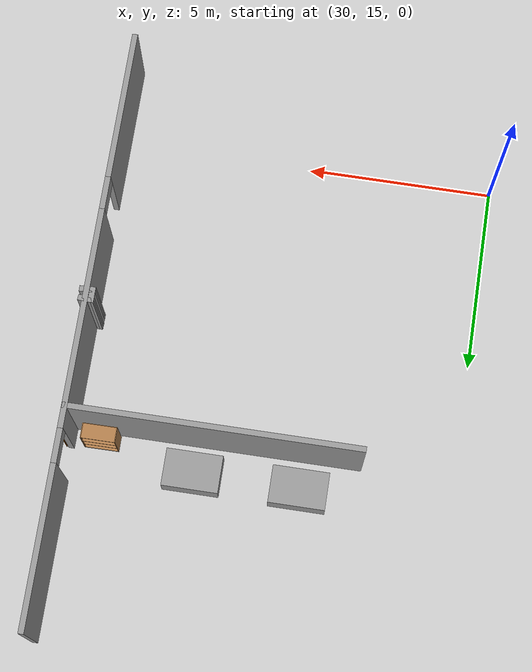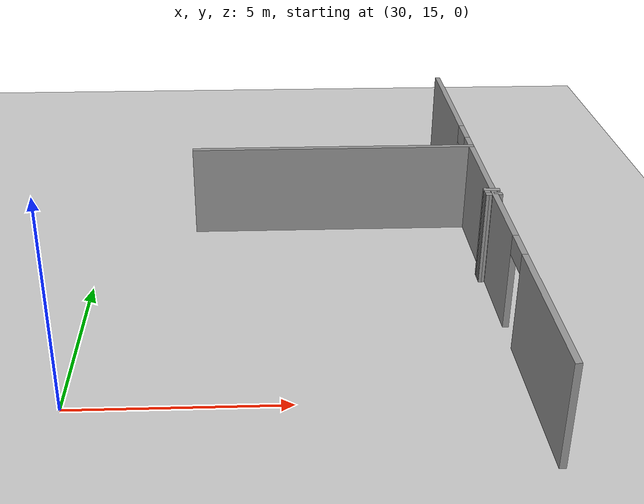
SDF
<sdf version="1.6">
 <world name="default">
  <model name="ground_plane">
   <static>1</static>
   <link name="link">
    <collision name="collision">
     <geometry><plane><normal>0 0 1</normal><size>100 100</size></plane></geometry>
     <surface><friction><ode><mu>100</mu><mu2>50</mu2></ode></friction></surface>
    </collision>
    <visual name="visual">
     <cast_shadows>0</cast_shadows>
     <geometry><plane><normal>0 0 1</normal><size>100 100</size></plane></geometry>
     <material>
      <script><uri>file://media/materials/scripts/gazebo.material</uri><name>Gazebo/Grey</name></script>
     </material>
    </visual>
   </link>
  </model>
  <model name="CVSSP">
   <pose>23.8714 24.094 0 0 -0 0</pose>
   <link name="Wall_11">
    <pose>16.2898 -3.24326 0 0 0 -1.57079</pose>
    <visual name="Wall_11_Visual_0">
     <pose>-5.93516 0 1.25 0 -0 0</pose>
     <geometry><box><size>4.26019 0.15 2.5</size></box></geometry>
     <material>
      <script><uri>file://media/materials/scripts/gazebo.material</uri><name>Gazebo/Grey</name></script>
      <ambient>0.588235 0.588235 0.588235 1</ambient>
     </material>
    </visual>
    <collision name="Wall_11_Collision_0">
     <geometry><box><size>4.26019 0.15 2.5</size></box></geometry>
     <pose>-5.93516 0 1.25 0 -0 0</pose>
    </collision>
    <visual name="Wall_11_Visual_1">
     <pose>0.054186 0 1.25 0 -0 0</pose>
     <geometry><box><size>5.9185 0.15 2.5</size></box></geometry>
     <material>
      <script><uri>file://media/materials/scripts/gazebo.material</uri><name>Gazebo/Grey</name></script>
      <ambient>0.588235 0.588235 0.588235 1</ambient>
     </material>
    </visual>
    <collision name="Wall_11_Collision_1">
     <geometry><box><size>5.9185 0.15 2.5</size></box></geometry>
     <pose>0.054186 0 1.25 0 -0 0</pose>
    </collision>
    <visual name="Wall_11_Visual_2">
     <pose>5.98935 0 1.25 0 -0 0</pose>
     <geometry><box><size>4.15182 0.15 2.5</size></box></geometry>
     <material>
      <script><uri>file://media/materials/scripts/gazebo.material</uri><name>Gazebo/Grey</name></script>
      <ambient>0.588235 0.588235 0.588235 1</ambient>
     </material>
    </visual>
    <collision name="Wall_11_Collision_2">
     <geometry><box><size>4.15182 0.15 2.5</size></box></geometry>
     <pose>5.98935 0 1.25 0 -0 0</pose>
    </collision>
    <visual name="Wall_11_Visual_3">
     <pose>-3.35506 0 2.25 0 -0 0</pose>
     <geometry><box><size>0.9 0.15 0.5</size></box></geometry>
     <material>
      <script><uri>file://media/materials/scripts/gazebo.material</uri><name>Gazebo/Grey</name></script>
      <ambient>0.588235 0.588235 0.588235 1</ambient>
     </material>
    </visual>
    <collision name="Wall_11_Collision_3">
     <geometry><box><size>0.9 0.15 0.5</size></box></geometry>
     <pose>-3.35506 0 2.25 0 -0 0</pose>
    </collision>
    <visual name="Wall_11_Visual_4">
     <pose>3.46344 0 2.25 0 -0 0</pose>
     <geometry><box><size>0.9 0.15 0.5</size></box></geometry>
     <material>
      <script><uri>file://media/materials/scripts/gazebo.material</uri><name>Gazebo/Grey</name></script>
      <ambient>0.588235 0.588235 0.588235 1</ambient>
     </material>
    </visual>
    <collision name="Wall_11_Collision_4">
     <geometry><box><size>0.9 0.15 0.5</size></box></geometry>
     <pose>3.46344 0 2.25 0 -0 0</pose>
    </collision>
   </link>
   <link name="Wall_125">
    <collision name="Wall_125_Collision">
     <geometry><box><size>7.75 0.15 2.5</size></box></geometry>
     <pose>0 0 1.25 0 -0 0</pose>
    </collision>
    <visual name="Wall_125_Visual">
     <pose>0 0 1.25 0 -0 0</pose>
     <geometry><box><size>7.75 0.15 2.5</size></box></geometry>
     <material>
      <script><uri>file://media/materials/scripts/gazebo.material</uri><name>Gazebo/Grey</name></script>
      <ambient>1 1 1 1</ambient>
     </material>
    </visual>
    <pose>12.4797 -0.937315 0 0 -0 3.14159</pose>
   </link>
   <link name="Wall_739">
    <collision name="Wall_739_Collision">
     <geometry><box><size>0.412351 0.15 2.5</size></box></geometry>
     <pose>0 0 1.25 0 -0 0</pose>
    </collision>
    <visual name="Wall_739_Visual">
     <pose>0 0 1.25 0 -0 0</pose>
     <geometry><box><size>0.412351 0.15 2.5</size></box></geometry>
     <material>
      <script><uri>file://media/materials/scripts/gazebo.material</uri><name>Gazebo/Grey</name></script>
      <ambient>1 1 1 1</ambient>
     </material>
    </visual>
    <pose>16.2625 -3.77466 0 0 0 -0.066568</pose>
   </link>
   <link name="Wall_741">
    <collision name="Wall_741_Collision">
     <geometry><box><size>0.42166 0.15 2.5</size></box></geometry>
     <pose>0 0 1.25 0 -0 0</pose>
    </collision>
    <visual name="Wall_741_Visual">
     <pose>0 0 1.25 0 -0 0</pose>
     <geometry><box><size>0.42166 0.15 2.5</size></box></geometry>
     <material>
      <script><uri>file://media/materials/scripts/gazebo.material</uri><name>Gazebo/Grey</name></script>
      <ambient>1 1 1 1</ambient>
     </material>
    </visual>
    <pose>16.2669 -4.03264 0 0 0 -3.10935</pose>
   </link>
   <link name="Wall_742">
    <collision name="Wall_742_Collision">
     <geometry><box><size>0.421096 0.15 2.5</size></box></geometry>
     <pose>0 0 1.25 0 -0 0</pose>
    </collision>
    <visual name="Wall_742_Visual">
     <pose>0 0 1.25 0 -0 0</pose>
     <geometry><box><size>0.421096 0.15 2.5</size></box></geometry>
     <material>
      <script><uri>file://media/materials/scripts/gazebo.material</uri><name>Gazebo/Grey</name></script>
      <ambient>1 1 1 1</ambient>
     </material>
    </visual>
    <pose>16.1314 -3.90146 0 0 -0 1.5708</pose>
   </link>
   <static>1</static>
  </model>
  <model name="bookshelf_oak_clone">
   <link name="link">
    <inertial><mass>1</mass></inertial>
    <visual name="visual4">
     <pose>0 -0.195 0.03 0 -0 0</pose>
     <geometry><box><size>0.88 0.4 0.06</size></box></geometry>
     <material>
      <script><uri>file://media/materials/scripts/gazebo.material</uri><name>Gazebo/Wood</name></script>
      <shader type="pixel"/>
     </material>
    </visual>
    <visual name="visual3">
     <pose>-0.45 -0.195 0.6 0 -0 0</pose>
     <geometry><box><size>0.02 0.4 1.2</size></box></geometry>
     <material>
      <script><uri>file://media/materials/scripts/gazebo.material</uri><name>Gazebo/Wood</name></script>
      <shader type="pixel"/>
     </material>
    </visual>
    <visual name="visual5">
     <pose>0 -0.195 1.19 0 -0 0</pose>
     <geometry><box><size>0.88 0.4 0.02</size></box></geometry>
     <material>
      <script><uri>file://media/materials/scripts/gazebo.material</uri><name>Gazebo/Wood</name></script>
      <shader type="pixel"/>
     </material>
    </visual>
    <visual name="visual2">
     <pose>0.45 -0.195 0.6 0 -0 0</pose>
     <geometry><box><size>0.02 0.4 1.2</size></box></geometry>
     <material>
      <script><uri>file://media/materials/scripts/gazebo.material</uri><name>Gazebo/Wood</name></script>
      <shader type="pixel"/>
     </material>
    </visual>
    <visual name="visual1">
     <pose>0 0.005 0.6 0 -0 0</pose>
     <geometry><box><size>0.9 0.01 1.2</size></box></geometry>
     <material>
      <script><uri>file://media/materials/scripts/gazebo.material</uri><name>Gazebo/Wood</name></script>
      <shader type="pixel"/>
     </material>
    </visual>
    <visual name="visual6">
     <pose>0 -0.195 0.43 0 -0 0</pose>
     <geometry><box><size>0.88 0.4 0.02</size></box></geometry>
     <material>
      <script><uri>file://media/materials/scripts/gazebo.material</uri><name>Gazebo/Wood</name></script>
      <shader type="pixel"/>
     </material>
    </visual>
    <visual name="visual7">
     <pose>0 -0.195 0.8 0 -0 0</pose>
     <geometry><box><size>0.88 0.4 0.02</size></box></geometry>
     <material>
      <script><uri>file://media/materials/scripts/gazebo.material</uri><name>Gazebo/Wood</name></script>
      <shader type="pixel"/>
     </material>
    </visual>
    <collision name="back">
     <pose>0 0.005 0.6 0 -0 0</pose>
     <geometry><box><size>0.9 0.01 1.2</size></box></geometry>
     <surface>
      <friction>
       <ode><mu>1</mu><mu2>1</mu2><fdir1>0 0 0</fdir1><slip1>0</slip1><slip2>0</slip2></ode>
       <torsional>
        <coefficient>1</coefficient>
        <patch_radius>0</patch_radius>
        <surface_radius>0</surface_radius>
        <use_patch_radius>1</use_patch_radius>
        <ode><slip>0</slip></ode>
       </torsional>
      </friction>
      <bounce><restitution_coefficient>0</restitution_coefficient><threshold>1e+06</threshold></bounce>
      <contact>
       <collide_without_contact>0</collide_without_contact>
       <collide_without_contact_bitmask>1</collide_without_contact_bitmask>
       <collide_bitmask>1</collide_bitmask>
       <ode>
        <soft_cfm>0</soft_cfm>
        <soft_erp>0.2</soft_erp>
        <kp>1e+13</kp>
        <kd>1</kd>
        <max_vel>0.01</max_vel>
        <min_depth>0</min_depth>
       </ode>
       <bullet>
        <split_impulse>1</split_impulse>
        <split_impulse_penetration_threshold>-0.01</split_impulse_penetration_threshold>
        <soft_cfm>0</soft_cfm>
        <soft_erp>0.2</soft_erp>
        <kp>1e+13</kp>
        <kd>1</kd>
       </bullet>
      </contact>
     </surface>
    </collision>
    <collision name="left_side">
     <pose>0.45 -0.195 0.6 0 -0 0</pose>
     <geometry><box><size>0.02 0.4 1.2</size></box></geometry>
     <surface>
      <friction>
       <ode><mu>1</mu><mu2>1</mu2><fdir1>0 0 0</fdir1><slip1>0</slip1><slip2>0</slip2></ode>
       <torsional>
        <coefficient>1</coefficient>
        <patch_radius>0</patch_radius>
        <surface_radius>0</surface_radius>
        <use_patch_radius>1</use_patch_radius>
        <ode><slip>0</slip></ode>
       </torsional>
      </friction>
      <bounce><restitution_coefficient>0</restitution_coefficient><threshold>1e+06</threshold></bounce>
      <contact>
       <collide_without_contact>0</collide_without_contact>
       <collide_without_contact_bitmask>1</collide_without_contact_bitmask>
       <collide_bitmask>1</collide_bitmask>
       <ode>
        <soft_cfm>0</soft_cfm>
        <soft_erp>0.2</soft_erp>
        <kp>1e+13</kp>
        <kd>1</kd>
        <max_vel>0.01</max_vel>
        <min_depth>0</min_depth>
       </ode>
       <bullet>
        <split_impulse>1</split_impulse>
        <split_impulse_penetration_threshold>-0.01</split_impulse_penetration_threshold>
        <soft_cfm>0</soft_cfm>
        <soft_erp>0.2</soft_erp>
        <kp>1e+13</kp>
        <kd>1</kd>
       </bullet>
      </contact>
     </surface>
    </collision>
    <collision name="right_side">
     <pose>-0.45 -0.195 0.6 0 -0 0</pose>
     <geometry><box><size>0.02 0.4 1.2</size></box></geometry>
     <surface>
      <friction>
       <ode><mu>1</mu><mu2>1</mu2><fdir1>0 0 0</fdir1><slip1>0</slip1><slip2>0</slip2></ode>
       <torsional>
        <coefficient>1</coefficient>
        <patch_radius>0</patch_radius>
        <surface_radius>0</surface_radius>
        <use_patch_radius>1</use_patch_radius>
        <ode><slip>0</slip></ode>
       </torsional>
      </friction>
      <bounce><restitution_coefficient>0</restitution_coefficient><threshold>1e+06</threshold></bounce>
      <contact>
       <collide_without_contact>0</collide_without_contact>
       <collide_without_contact_bitmask>1</collide_without_contact_bitmask>
       <collide_bitmask>1</collide_bitmask>
       <ode>
        <soft_cfm>0</soft_cfm>
        <soft_erp>0.2</soft_erp>
        <kp>1e+13</kp>
        <kd>1</kd>
        <max_vel>0.01</max_vel>
        <min_depth>0</min_depth>
       </ode>
       <bullet>
        <split_impulse>1</split_impulse>
        <split_impulse_penetration_threshold>-0.01</split_impulse_penetration_threshold>
        <soft_cfm>0</soft_cfm>
        <soft_erp>0.2</soft_erp>
        <kp>1e+13</kp>
        <kd>1</kd>
       </bullet>
      </contact>
     </surface>
    </collision>
    <collision name="bottom">
     <pose>0 -0.195 0.03 0 -0 0</pose>
     <geometry><box><size>0.88 0.4 0.06</size></box></geometry>
     <surface>
      <friction>
       <ode><mu>1</mu><mu2>1</mu2><fdir1>0 0 0</fdir1><slip1>0</slip1><slip2>0</slip2></ode>
       <torsional>
        <coefficient>1</coefficient>
        <patch_radius>0</patch_radius>
        <surface_radius>0</surface_radius>
        <use_patch_radius>1</use_patch_radius>
        <ode><slip>0</slip></ode>
       </torsional>
      </friction>
      <bounce><restitution_coefficient>0</restitution_coefficient><threshold>1e+06</threshold></bounce>
      <contact>
       <collide_without_contact>0</collide_without_contact>
       <collide_without_contact_bitmask>1</collide_without_contact_bitmask>
       <collide_bitmask>1</collide_bitmask>
       <ode>
        <soft_cfm>0</soft_cfm>
        <soft_erp>0.2</soft_erp>
        <kp>1e+13</kp>
        <kd>1</kd>
        <max_vel>0.01</max_vel>
        <min_depth>0</min_depth>
       </ode>
       <bullet>
        <split_impulse>1</split_impulse>
        <split_impulse_penetration_threshold>-0.01</split_impulse_penetration_threshold>
        <soft_cfm>0</soft_cfm>
        <soft_erp>0.2</soft_erp>
        <kp>1e+13</kp>
        <kd>1</kd>
       </bullet>
      </contact>
     </surface>
    </collision>
    <collision name="top">
     <pose>0 -0.195 1.19 0 -0 0</pose>
     <geometry><box><size>0.88 0.4 0.02</size></box></geometry>
     <surface>
      <friction>
       <ode><mu>1</mu><mu2>1</mu2><fdir1>0 0 0</fdir1><slip1>0</slip1><slip2>0</slip2></ode>
       <torsional>
        <coefficient>1</coefficient>
        <patch_radius>0</patch_radius>
        <surface_radius>0</surface_radius>
        <use_patch_radius>1</use_patch_radius>
        <ode><slip>0</slip></ode>
       </torsional>
      </friction>
      <bounce><restitution_coefficient>0</restitution_coefficient><threshold>1e+06</threshold></bounce>
      <contact>
       <collide_without_contact>0</collide_without_contact>
       <collide_without_contact_bitmask>1</collide_without_contact_bitmask>
       <collide_bitmask>1</collide_bitmask>
       <ode>
        <soft_cfm>0</soft_cfm>
        <soft_erp>0.2</soft_erp>
        <kp>1e+13</kp>
        <kd>1</kd>
        <max_vel>0.01</max_vel>
        <min_depth>0</min_depth>
       </ode>
       <bullet>
        <split_impulse>1</split_impulse>
        <split_impulse_penetration_threshold>-0.01</split_impulse_penetration_threshold>
        <soft_cfm>0</soft_cfm>
        <soft_erp>0.2</soft_erp>
        <kp>1e+13</kp>
        <kd>1</kd>
       </bullet>
      </contact>
     </surface>
    </collision>
    <collision name="low_shelf">
     <pose>0 -0.195 0.43 0 -0 0</pose>
     <geometry><box><size>0.88 0.4 0.02</size></box></geometry>
     <surface>
      <friction>
       <ode><mu>1</mu><mu2>1</mu2><fdir1>0 0 0</fdir1><slip1>0</slip1><slip2>0</slip2></ode>
       <torsional>
        <coefficient>1</coefficient>
        <patch_radius>0</patch_radius>
        <surface_radius>0</surface_radius>
        <use_patch_radius>1</use_patch_radius>
        <ode><slip>0</slip></ode>
       </torsional>
      </friction>
      <bounce><restitution_coefficient>0</restitution_coefficient><threshold>1e+06</threshold></bounce>
      <contact>
       <collide_without_contact>0</collide_without_contact>
       <collide_without_contact_bitmask>1</collide_without_contact_bitmask>
       <collide_bitmask>1</collide_bitmask>
       <ode>
        <soft_cfm>0</soft_cfm>
        <soft_erp>0.2</soft_erp>
        <kp>1e+13</kp>
        <kd>1</kd>
        <max_vel>0.01</max_vel>
        <min_depth>0</min_depth>
       </ode>
       <bullet>
        <split_impulse>1</split_impulse>
        <split_impulse_penetration_threshold>-0.01</split_impulse_penetration_threshold>
        <soft_cfm>0</soft_cfm>
        <soft_erp>0.2</soft_erp>
        <kp>1e+13</kp>
        <kd>1</kd>
       </bullet>
      </contact>
     </surface>
    </collision>
    <collision name="high_shelf">
     <pose>0 -0.195 0.8 0 -0 0</pose>
     <geometry><box><size>0.88 0.4 0.02</size></box></geometry>
     <surface>
      <friction>
       <ode><mu>1</mu><mu2>1</mu2><fdir1>0 0 0</fdir1><slip1>0</slip1><slip2>0</slip2></ode>
       <torsional>
        <coefficient>1</coefficient>
        <patch_radius>0</patch_radius>
        <surface_radius>0</surface_radius>
        <use_patch_radius>1</use_patch_radius>
        <ode><slip>0</slip></ode>
       </torsional>
      </friction>
      <bounce><restitution_coefficient>0</restitution_coefficient><threshold>1e+06</threshold></bounce>
      <contact>
       <collide_without_contact>0</collide_without_contact>
       <collide_without_contact_bitmask>1</collide_without_contact_bitmask>
       <collide_bitmask>1</collide_bitmask>
       <ode>
        <soft_cfm>0</soft_cfm>
        <soft_erp>0.2</soft_erp>
        <kp>1e+13</kp>
        <kd>1</kd>
        <max_vel>0.01</max_vel>
        <min_depth>0</min_depth>
       </ode>
       <bullet>
        <split_impulse>1</split_impulse>
        <split_impulse_penetration_threshold>-0.01</split_impulse_penetration_threshold>
        <soft_cfm>0</soft_cfm>
        <soft_erp>0.2</soft_erp>
        <kp>1e+13</kp>
        <kd>1</kd>
       </bullet>
      </contact>
     </surface>
    </collision>
   </link>
   <static>1</static>
   <pose>39.3619 23.2793 0 0 0 -3.13727</pose>
  </model>
  <model name="ply_wood_under_box_clone">
   <link name="link">
    <inertial>
     <mass>1</mass>
     <inertia>
      <ixx>0.166667</ixx>
      <ixy>0</ixy>
      <ixz>0</ixz>
      <iyy>0.166667</iyy>
      <iyz>0</iyz>
      <izz>0.166667</izz>
     </inertia>
    </inertial>
    <gravity>0</gravity>
    <visual name="visual">
     <geometry><box><size>1 1.50222 0.628617</size></box></geometry>
     <material>
      <script><name>Gazebo/Grey</name><uri>file://media/materials/scripts/gazebo.material</uri></script>
      <shader type="pixel"><normal_map>__default__</normal_map></shader>
     </material>
    </visual>
    <collision name="collision">
     <geometry><box><size>1 1.50222 0.628617</size></box></geometry>
     <surface>
      <friction>
       <ode><mu>1</mu><mu2>1</mu2><fdir1>0 0 0</fdir1><slip1>0</slip1><slip2>0</slip2></ode>
       <torsional>
        <coefficient>1</coefficient>
        <patch_radius>0</patch_radius>
        <surface_radius>0</surface_radius>
        <use_patch_radius>1</use_patch_radius>
        <ode><slip>0</slip></ode>
       </torsional>
      </friction>
      <bounce><restitution_coefficient>0</restitution_coefficient><threshold>1e+06</threshold></bounce>
      <contact>
       <collide_without_contact>0</collide_without_contact>
       <collide_without_contact_bitmask>1</collide_without_contact_bitmask>
       <collide_bitmask>1</collide_bitmask>
       <ode>
        <soft_cfm>0</soft_cfm>
        <soft_erp>0.2</soft_erp>
        <kp>1e+13</kp>
        <kd>1</kd>
        <max_vel>0.01</max_vel>
        <min_depth>0</min_depth>
       </ode>
       <bullet>
        <split_impulse>1</split_impulse>
        <split_impulse_penetration_threshold>-0.01</split_impulse_penetration_threshold>
        <soft_cfm>0</soft_cfm>
        <soft_erp>0.2</soft_erp>
        <kp>1e+13</kp>
        <kd>1</kd>
       </bullet>
      </contact>
     </surface>
    </collision>
   </link>
   <static>1</static>
   <pose>36.8472 23.9992 0.362453 0 0 -1.57153</pose>
  </model>
  <model name="ply_wood_under_box_clone_clone">
   <link name="link">
    <inertial>
     <mass>1</mass>
     <inertia>
      <ixx>0.166667</ixx>
      <ixy>0</ixy>
      <ixz>0</ixz>
      <iyy>0.166667</iyy>
      <iyz>0</iyz>
      <izz>0.166667</izz>
     </inertia>
    </inertial>
    <gravity>0</gravity>
    <visual name="visual">
     <geometry><box><size>1 1.50222 0.628617</size></box></geometry>
     <material>
      <script><name>Gazebo/Grey</name><uri>file://media/materials/scripts/gazebo.material</uri></script>
      <shader type="pixel"><normal_map>__default__</normal_map></shader>
     </material>
    </visual>
    <collision name="collision">
     <geometry><box><size>1 1.50222 0.628617</size></box></geometry>
     <surface>
      <friction>
       <ode><mu>1</mu><mu2>1</mu2><fdir1>0 0 0</fdir1><slip1>0</slip1><slip2>0</slip2></ode>
       <torsional>
        <coefficient>1</coefficient>
        <patch_radius>0</patch_radius>
        <surface_radius>0</surface_radius>
        <use_patch_radius>1</use_patch_radius>
        <ode><slip>0</slip></ode>
       </torsional>
      </friction>
      <bounce><restitution_coefficient>0</restitution_coefficient><threshold>1e+06</threshold></bounce>
      <contact>
       <collide_without_contact>0</collide_without_contact>
       <collide_without_contact_bitmask>1</collide_without_contact_bitmask>
       <collide_bitmask>1</collide_bitmask>
       <ode>
        <soft_cfm>0</soft_cfm>
        <soft_erp>0.2</soft_erp>
        <kp>1e+13</kp>
        <kd>1</kd>
        <max_vel>0.01</max_vel>
        <min_depth>0</min_depth>
       </ode>
       <bullet>
        <split_impulse>1</split_impulse>
        <split_impulse_penetration_threshold>-0.01</split_impulse_penetration_threshold>
        <soft_cfm>0</soft_cfm>
        <soft_erp>0.2</soft_erp>
        <kp>1e+13</kp>
        <kd>1</kd>
       </bullet>
      </contact>
     </surface>
    </collision>
   </link>
   <static>1</static>
   <pose>34.0295 24.027 0.362453 0 0 -1.57153</pose>
  </model>
  <model name="oak_frame_0">
   <link name="link">
    <inertial>
     <mass>1</mass>
     <inertia>
      <ixx>0.166667</ixx>
      <ixy>0</ixy>
      <ixz>0</ixz>
      <iyy>0.166667</iyy>
      <iyz>0</iyz>
      <izz>0.166667</izz>
     </inertia>
    </inertial>
    <visual name="visual">
     <geometry><box><size>0.018685 0.182473 1.55153</size></box></geometry>
     <material>
      <script><name>Gazebo/Grey</name><uri>file://media/materials/scripts/gazebo.material</uri></script>
      <shader type="pixel"><normal_map>__default__</normal_map></shader>
      <diffuse>0.58 0.29 0 0</diffuse>
      <ambient>0.58 0.29 0 1</ambient>
      <specular>0.01 0.01 0.01 1</specular>
      <emissive>0 0 0 1</emissive>
     </material>
    </visual>
    <collision name="collision">
     <geometry><box><size>0.018685 0.182473 1.55153</size></box></geometry>
     <surface>
      <friction>
       <ode><mu>1</mu><mu2>1</mu2><fdir1>0 0 0</fdir1><slip1>0</slip1><slip2>0</slip2></ode>
       <torsional>
        <coefficient>1</coefficient>
        <patch_radius>0</patch_radius>
        <surface_radius>0</surface_radius>
        <use_patch_radius>1</use_patch_radius>
        <ode><slip>0</slip></ode>
       </torsional>
      </friction>
      <bounce><restitution_coefficient>0</restitution_coefficient><threshold>1e+06</threshold></bounce>
      <contact>
       <collide_without_contact>0</collide_without_contact>
       <collide_without_contact_bitmask>1</collide_without_contact_bitmask>
       <collide_bitmask>1</collide_bitmask>
       <ode>
        <soft_cfm>0</soft_cfm>
        <soft_erp>0.2</soft_erp>
        <kp>1e+13</kp>
        <kd>1</kd>
        <max_vel>0.01</max_vel>
        <min_depth>0</min_depth>
       </ode>
       <bullet>
        <split_impulse>1</split_impulse>
        <split_impulse_penetration_threshold>-0.01</split_impulse_penetration_threshold>
        <soft_cfm>0</soft_cfm>
        <soft_erp>0.2</soft_erp>
        <kp>1e+13</kp>
        <kd>1</kd>
       </bullet>
      </contact>
     </surface>
    </collision>
   </link>
   <static>1</static>
   <pose>40.2495 23.69 1.03242 0 -0 0</pose>
  </model>
  <model name="oak_frame_0_clone_0">
   <link name="link">
    <inertial>
     <mass>1</mass>
     <inertia>
      <ixx>0.166667</ixx>
      <ixy>0</ixy>
      <ixz>0</ixz>
      <iyy>0.166667</iyy>
      <iyz>0</iyz>
      <izz>0.166667</izz>
     </inertia>
    </inertial>
    <visual name="visual">
     <geometry><box><size>0.018685 0.076446 3.79933</size></box></geometry>
     <material>
      <script><name>Gazebo/Grey</name><uri>file://media/materials/scripts/gazebo.material</uri></script>
      <shader type="pixel"><normal_map>__default__</normal_map></shader>
      <diffuse>0.58 0.29 0 0</diffuse>
      <ambient>0.58 0.29 0 1</ambient>
      <specular>0.01 0.01 0.01 1</specular>
      <emissive>0 0 0 1</emissive>
     </material>
    </visual>
    <collision name="collision">
     <geometry><box><size>0.018685 0.076446 3.79933</size></box></geometry>
     <surface>
      <friction>
       <ode><mu>1</mu><mu2>1</mu2><fdir1>0 0 0</fdir1><slip1>0</slip1><slip2>0</slip2></ode>
       <torsional>
        <coefficient>1</coefficient>
        <patch_radius>0</patch_radius>
        <surface_radius>0</surface_radius>
        <use_patch_radius>1</use_patch_radius>
        <ode><slip>0</slip></ode>
       </torsional>
      </friction>
      <bounce><restitution_coefficient>0</restitution_coefficient><threshold>1e+06</threshold></bounce>
      <contact>
       <collide_without_contact>0</collide_without_contact>
       <collide_without_contact_bitmask>1</collide_without_contact_bitmask>
       <collide_bitmask>1</collide_bitmask>
       <ode>
        <soft_cfm>0</soft_cfm>
        <soft_erp>0.2</soft_erp>
        <kp>1e+13</kp>
        <kd>1</kd>
        <max_vel>0.01</max_vel>
        <min_depth>0</min_depth>
       </ode>
       <bullet>
        <split_impulse>1</split_impulse>
        <split_impulse_penetration_threshold>-0.01</split_impulse_penetration_threshold>
        <soft_cfm>0</soft_cfm>
        <soft_erp>0.2</soft_erp>
        <kp>1e+13</kp>
        <kd>1</kd>
       </bullet>
      </contact>
     </surface>
    </collision>
   </link>
   <static>1</static>
   <pose>40.2332 24.1894 2.05002 -1.55236 0 0</pose>
  </model>
 </world>
</sdf>
